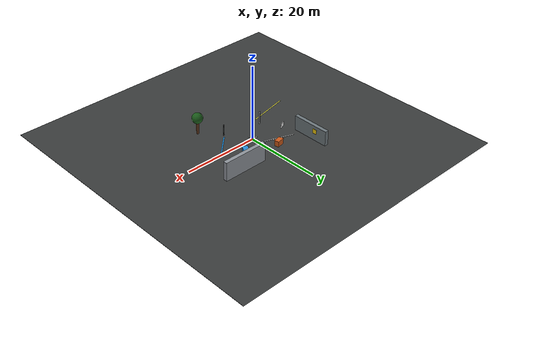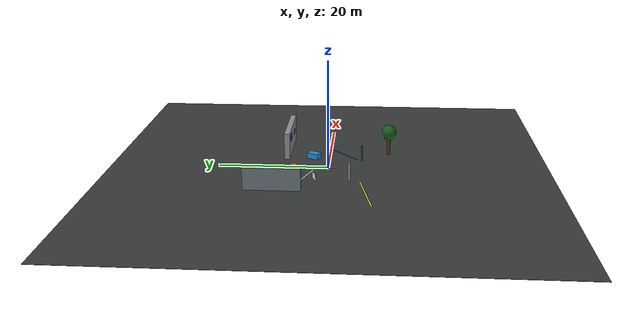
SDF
<?xml version="1.0" ?>
<sdf version="1.7">
  <world name="gps_denied_outdoor_lio_vio">
    <gravity>0 0 -9.80665</gravity>
    <magnetic_field>6e-06 2.3e-05 -4.2e-05</magnetic_field>
    <atmosphere type="adiabatic"/>

    <plugin filename="ignition-gazebo-physics-system"
            name="gz::sim::systems::Physics"/>
    <plugin filename="ignition-gazebo-user-commands-system"
            name="gz::sim::systems::UserCommands"/>
    <plugin filename="ignition-gazebo-scene-broadcaster-system"
            name="gz::sim::systems::SceneBroadcaster"/>
    <plugin filename="ignition-gazebo-sensors-system"
            name="gz::sim::systems::Sensors">
      <render_engine>ogre2</render_engine>
    </plugin>
    <plugin filename="ignition-gazebo-imu-system"
            name="gz::sim::systems::Imu"/>

    <scene>
      <ambient>0.55 0.55 0.55 1</ambient>
      <background>0.70 0.82 0.95 1</background>
      <shadows>true</shadows>
    </scene>

    <light name="sun" type="directional">
      <pose>0 0 30 0 0 0</pose>
      <cast_shadows>true</cast_shadows>
      <diffuse>0.9 0.85 0.75 1</diffuse>
      <specular>0.2 0.2 0.2 1</specular>
      <direction>-0.45 0.25 -0.86</direction>
    </light>

    <!-- Large textured-like ground. The visual color and small tiles below help VIO;
         the collision plane helps LiDAR/range returns in Gazebo. -->
    <model name="asphalt_ground">
      <static>true</static>
      <link name="link">
        <collision name="collision">
          <geometry>
            <box><size>80 80 0.05</size></box>
          </geometry>
        </collision>
        <visual name="visual">
          <geometry>
            <box><size>80 80 0.05</size></box>
          </geometry>
          <material>
            <ambient>0.22 0.23 0.23 1</ambient>
            <diffuse>0.22 0.23 0.23 1</diffuse>
          </material>
        </visual>
      </link>
    </model>

    <!-- Non-repeating ground markings. They are intentionally asymmetric so VIO has
         trackable image features and less repeated-pattern ambiguity. -->
    <model name="ground_feature_markings">
      <static>true</static>
      <link name="link">
        <visual name="stripe_0">
          <pose>-12 -7 0.031 0 0 0.2</pose>
          <geometry><box><size>11 0.25 0.01</size></box></geometry>
          <material><ambient>0.95 0.92 0.25 1</ambient><diffuse>0.95 0.92 0.25 1</diffuse></material>
        </visual>
        <visual name="stripe_1">
          <pose>-5 4 0.032 0 0 -0.35</pose>
          <geometry><box><size>8 0.25 0.01</size></box></geometry>
          <material><ambient>0.95 0.95 0.95 1</ambient><diffuse>0.95 0.95 0.95 1</diffuse></material>
        </visual>
        <visual name="stripe_2">
          <pose>7 -3 0.033 0 0 0.75</pose>
          <geometry><box><size>7 0.25 0.01</size></box></geometry>
          <material><ambient>0.1 0.6 0.95 1</ambient><diffuse>0.1 0.6 0.95 1</diffuse></material>
        </visual>
        <visual name="landing_h">
          <pose>0 0 0.034 0 0 0</pose>
          <geometry><box><size>3.0 0.22 0.01</size></box></geometry>
          <material><ambient>0.9 0.9 0.9 1</ambient><diffuse>0.9 0.9 0.9 1</diffuse></material>
        </visual>
        <visual name="landing_v">
          <pose>0 0 0.035 0 0 0</pose>
          <geometry><box><size>0.22 3.0 0.01</size></box></geometry>
          <material><ambient>0.9 0.9 0.9 1</ambient><diffuse>0.9 0.9 0.9 1</diffuse></material>
        </visual>
      </link>
    </model>

    <!-- Building walls and corners: strong geometry for LIO and high-contrast
         visual panels for VIO. -->
    <model name="building_block_a">
      <static>true</static>
      <pose>10 8 2.5 0 0 0</pose>
      <link name="link">
        <collision name="collision"><geometry><box><size>12 1.0 5.0</size></box></geometry></collision>
        <visual name="wall"><geometry><box><size>12 1.0 5.0</size></box></geometry>
          <material><ambient>0.55 0.57 0.60 1</ambient><diffuse>0.55 0.57 0.60 1</diffuse></material>
        </visual>
        <visual name="blue_panel"><pose>-3 -0.51 1.0 0 0 0</pose><geometry><box><size>2.0 0.03 1.2</size></box></geometry>
          <material><ambient>0.05 0.25 0.85 1</ambient><diffuse>0.05 0.25 0.85 1</diffuse></material>
        </visual>
        <visual name="red_panel"><pose>2.5 -0.52 0.2 0 0 0</pose><geometry><box><size>1.4 0.03 1.0</size></box></geometry>
          <material><ambient>0.9 0.15 0.12 1</ambient><diffuse>0.9 0.15 0.12 1</diffuse></material>
        </visual>
      </link>
    </model>

    <model name="building_block_b">
      <static>true</static>
      <pose>-11 9 2.0 0 0 1.5708</pose>
      <link name="link">
        <collision name="collision"><geometry><box><size>10 1.0 4.0</size></box></geometry></collision>
        <visual name="wall"><geometry><box><size>10 1.0 4.0</size></box></geometry>
          <material><ambient>0.42 0.46 0.48 1</ambient><diffuse>0.42 0.46 0.48 1</diffuse></material>
        </visual>
        <visual name="yellow_panel"><pose>1.5 -0.51 0.5 0 0 0</pose><geometry><box><size>1.2 0.03 1.2</size></box></geometry>
          <material><ambient>0.95 0.8 0.05 1</ambient><diffuse>0.95 0.8 0.05 1</diffuse></material>
        </visual>
      </link>
    </model>

    <!-- Poles, trunks, signs, and boxes give vertical edges for LIO and corners for VIO. -->
    <model name="feature_poles">
      <static>true</static>
      <link name="link">
        <collision name="pole_0_col"><pose>-6 -4 1.75 0 0 0</pose><geometry><cylinder><radius>0.18</radius><length>3.5</length></cylinder></geometry></collision>
        <visual name="pole_0_vis"><pose>-6 -4 1.75 0 0 0</pose><geometry><cylinder><radius>0.18</radius><length>3.5</length></cylinder></geometry><material><ambient>0.65 0.65 0.65 1</ambient><diffuse>0.65 0.65 0.65 1</diffuse></material></visual>
        <collision name="pole_1_col"><pose>4 -6 1.5 0 0 0</pose><geometry><cylinder><radius>0.15</radius><length>3.0</length></cylinder></geometry></collision>
        <visual name="pole_1_vis"><pose>4 -6 1.5 0 0 0</pose><geometry><cylinder><radius>0.15</radius><length>3.0</length></cylinder></geometry><material><ambient>0.25 0.25 0.25 1</ambient><diffuse>0.25 0.25 0.25 1</diffuse></material></visual>
        <collision name="tree_0_col"><pose>8 -11 2.0 0 0 0</pose><geometry><cylinder><radius>0.35</radius><length>4.0</length></cylinder></geometry></collision>
        <visual name="tree_0_vis"><pose>8 -11 2.0 0 0 0</pose><geometry><cylinder><radius>0.35</radius><length>4.0</length></cylinder></geometry><material><ambient>0.35 0.2 0.1 1</ambient><diffuse>0.35 0.2 0.1 1</diffuse></material></visual>
        <visual name="tree_0_crown"><pose>8 -11 4.4 0 0 0</pose><geometry><sphere><radius>1.4</radius></sphere></geometry><material><ambient>0.1 0.35 0.1 1</ambient><diffuse>0.1 0.35 0.1 1</diffuse></material></visual>
      </link>
    </model>

    <model name="feature_boxes">
      <static>true</static>
      <link name="link">
        <collision name="box_0_col"><pose>-3 6 0.75 0 0 0.2</pose><geometry><box><size>2.0 1.2 1.5</size></box></geometry></collision>
        <visual name="box_0_vis"><pose>-3 6 0.75 0 0 0.2</pose><geometry><box><size>2.0 1.2 1.5</size></box></geometry><material><ambient>0.8 0.35 0.1 1</ambient><diffuse>0.8 0.35 0.1 1</diffuse></material></visual>
        <collision name="box_1_col"><pose>5 3 0.55 0 0 -0.5</pose><geometry><box><size>1.4 2.2 1.1</size></box></geometry></collision>
        <visual name="box_1_vis"><pose>5 3 0.55 0 0 -0.5</pose><geometry><box><size>1.4 2.2 1.1</size></box></geometry><material><ambient>0.15 0.55 0.85 1</ambient><diffuse>0.15 0.55 0.85 1</diffuse></material></visual>
        <collision name="sign_col"><pose>-8 2 1.5 0 0 0.4</pose><geometry><box><size>1.8 0.12 1.2</size></box></geometry></collision>
        <visual name="sign_vis"><pose>-8 2 1.5 0 0 0.4</pose><geometry><box><size>1.8 0.12 1.2</size></box></geometry><material><ambient>0.95 0.95 0.95 1</ambient><diffuse>0.95 0.95 0.95 1</diffuse></material></visual>
      </link>
    </model>

    <include>
      <uri>model://f450_lio_vio_sensor_rig</uri>
      <pose>0 0 0.25 0 0 0</pose>
    </include>
  </world>
</sdf>

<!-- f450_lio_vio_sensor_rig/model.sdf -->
<sdf version="1.7">
  <model name="f450_lio_vio_sensor_rig">
    <pose>0 0 0 0 0 0</pose>
    <static>false</static>

    <link name="base_link">
      <gravity>false</gravity>
      <inertial>
        <mass>2.0</mass>
        <inertia>
          <ixx>0.02</ixx><iyy>0.02</iyy><izz>0.04</izz>
          <ixy>0</ixy><ixz>0</ixz><iyz>0</iyz>
        </inertia>
      </inertial>

      <collision name="body_collision">
        <geometry><box><size>0.34 0.34 0.08</size></box></geometry>
      </collision>
      <visual name="body_visual">
        <geometry><box><size>0.34 0.34 0.08</size></box></geometry>
        <material><ambient>0.08 0.08 0.08 1</ambient><diffuse>0.08 0.08 0.08 1</diffuse></material>
      </visual>

      <visual name="front_arm">
        <pose>0.18 0 0 0 0 0</pose>
        <geometry><box><size>0.36 0.035 0.035</size></box></geometry>
        <material><ambient>0.85 0.1 0.1 1</ambient><diffuse>0.85 0.1 0.1 1</diffuse></material>
      </visual>
      <visual name="left_arm">
        <pose>0 0.18 0 0 0 1.5708</pose>
        <geometry><box><size>0.36 0.035 0.035</size></box></geometry>
        <material><ambient>0.1 0.1 0.85 1</ambient><diffuse>0.1 0.1 0.85 1</diffuse></material>
      </visual>
      <visual name="right_arm">
        <pose>0 -0.18 0 0 0 1.5708</pose>
        <geometry><box><size>0.36 0.035 0.035</size></box></geometry>
        <material><ambient>0.1 0.1 0.85 1</ambient><diffuse>0.1 0.1 0.85 1</diffuse></material>
      </visual>

      <sensor name="imu" type="imu">
        <always_on>true</always_on>
        <update_rate>200</update_rate>
        <topic>/gazebo/imu</topic>
        <imu>
          <angular_velocity>
            <x><noise type="gaussian"><mean>0</mean><stddev>0.002</stddev></noise></x>
            <y><noise type="gaussian"><mean>0</mean><stddev>0.002</stddev></noise></y>
            <z><noise type="gaussian"><mean>0</mean><stddev>0.002</stddev></noise></z>
          </angular_velocity>
          <linear_acceleration>
            <x><noise type="gaussian"><mean>0</mean><stddev>0.03</stddev></noise></x>
            <y><noise type="gaussian"><mean>0</mean><stddev>0.03</stddev></noise></y>
            <z><noise type="gaussian"><mean>0</mean><stddev>0.03</stddev></noise></z>
          </linear_acceleration>
        </imu>
      </sensor>

      <sensor name="lidar_3d" type="gpu_lidar">
        <pose>0 0 0.08 0 0 0</pose>
        <always_on>true</always_on>
        <update_rate>10</update_rate>
        <topic>/gazebo/lidar/points</topic>
        <lidar>
          <scan>
            <horizontal>
              <samples>1024</samples>
              <resolution>1</resolution>
              <min_angle>-3.14159</min_angle>
              <max_angle>3.14159</max_angle>
            </horizontal>
            <vertical>
              <samples>32</samples>
              <resolution>1</resolution>
              <min_angle>-0.43633</min_angle>
              <max_angle>0.43633</max_angle>
            </vertical>
          </scan>
          <range>
            <min>0.5</min>
            <max>60.0</max>
            <resolution>0.02</resolution>
          </range>
          <noise>
            <type>gaussian</type>
            <mean>0</mean>
            <stddev>0.015</stddev>
          </noise>
        </lidar>
      </sensor>

      <sensor name="stereo_left" type="camera">
        <pose>0.12 0.06 0.03 0 0 0</pose>
        <always_on>true</always_on>
        <update_rate>30</update_rate>
        <topic>/gazebo/stereo/left/image</topic>
        <camera>
          <horizontal_fov>1.39626</horizontal_fov>
          <image><width>752</width><height>480</height><format>R8G8B8</format></image>
          <clip><near>0.05</near><far>80</far></clip>
          <noise><type>gaussian</type><mean>0</mean><stddev>0.005</stddev></noise>
        </camera>
      </sensor>

      <sensor name="stereo_right" type="camera">
        <pose>0.12 -0.06 0.03 0 0 0</pose>
        <always_on>true</always_on>
        <update_rate>30</update_rate>
        <topic>/gazebo/stereo/right/image</topic>
        <camera>
          <horizontal_fov>1.39626</horizontal_fov>
          <image><width>752</width><height>480</height><format>R8G8B8</format></image>
          <clip><near>0.05</near><far>80</far></clip>
          <noise><type>gaussian</type><mean>0</mean><stddev>0.005</stddev></noise>
        </camera>
      </sensor>

      <sensor name="rgbd_camera" type="rgbd_camera">
        <pose>0.11 0 0.02 0 0 0</pose>
        <always_on>true</always_on>
        <update_rate>20</update_rate>
        <topic>/gazebo/rgbd</topic>
        <camera>
          <horizontal_fov>1.047</horizontal_fov>
          <image><width>640</width><height>480</height><format>R8G8B8</format></image>
          <clip><near>0.1</near><far>30</far></clip>
          <noise><type>gaussian</type><mean>0</mean><stddev>0.006</stddev></noise>
        </camera>
      </sensor>
    </link>
  </model>
</sdf>
